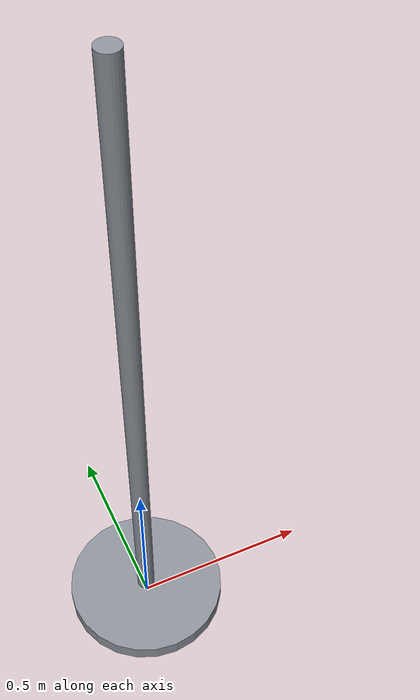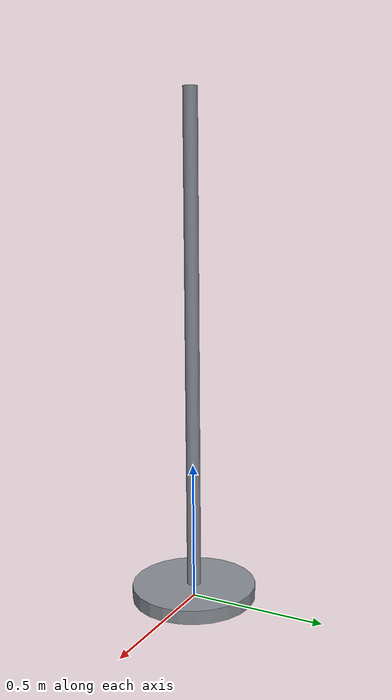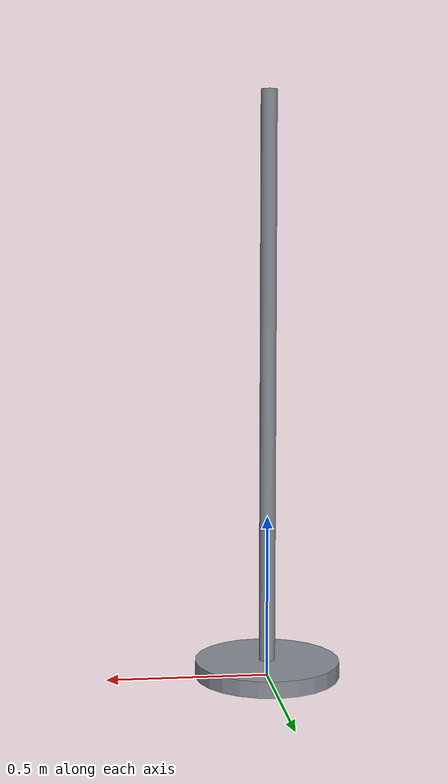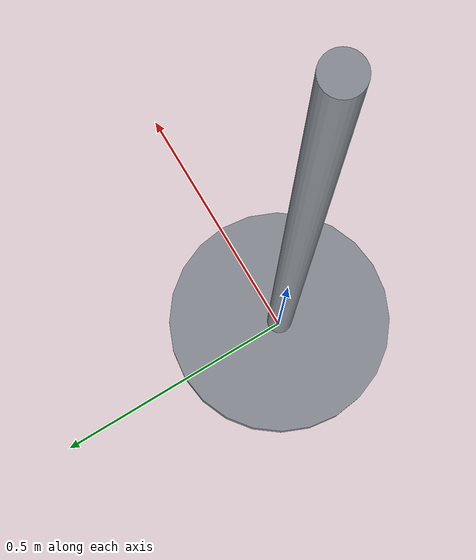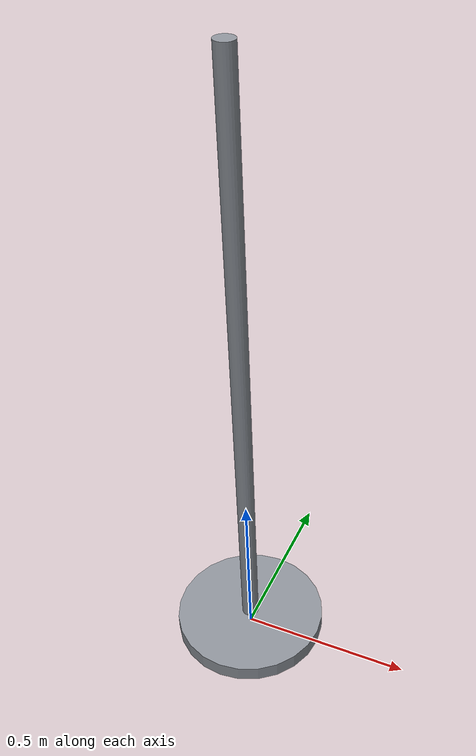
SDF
<?xml version="1.0"?>
<sdf version="1.9">
  <model name="iv_pole">
    <static>true</static>
    <link name="link">
      <collision name="collision_0">
        <pose>0 0 0.925 0 0 0</pose>
        <geometry><cylinder><radius>0.025</radius><length>1.75</length></cylinder></geometry>
      </collision>
      <visual name="visual_0">
        <pose>0 0 0.925 0 0 0</pose>
        <geometry><cylinder><radius>0.025</radius><length>1.75</length></cylinder></geometry>
        <material>
          <ambient>0.55 0.57 0.60 1</ambient>
          <diffuse>0.55 0.57 0.60 1</diffuse>
        </material>
      </visual>
      <collision name="collision_1">
        <pose>0 0 0.025 0 0 0</pose>
        <geometry><cylinder><radius>0.225</radius><length>0.05</length></cylinder></geometry>
      </collision>
      <visual name="visual_1">
        <pose>0 0 0.025 0 0 0</pose>
        <geometry><cylinder><radius>0.225</radius><length>0.05</length></cylinder></geometry>
        <material>
          <ambient>0.55 0.57 0.60 1</ambient>
          <diffuse>0.55 0.57 0.60 1</diffuse>
        </material>
      </visual>
    </link>
  </model>
</sdf>
